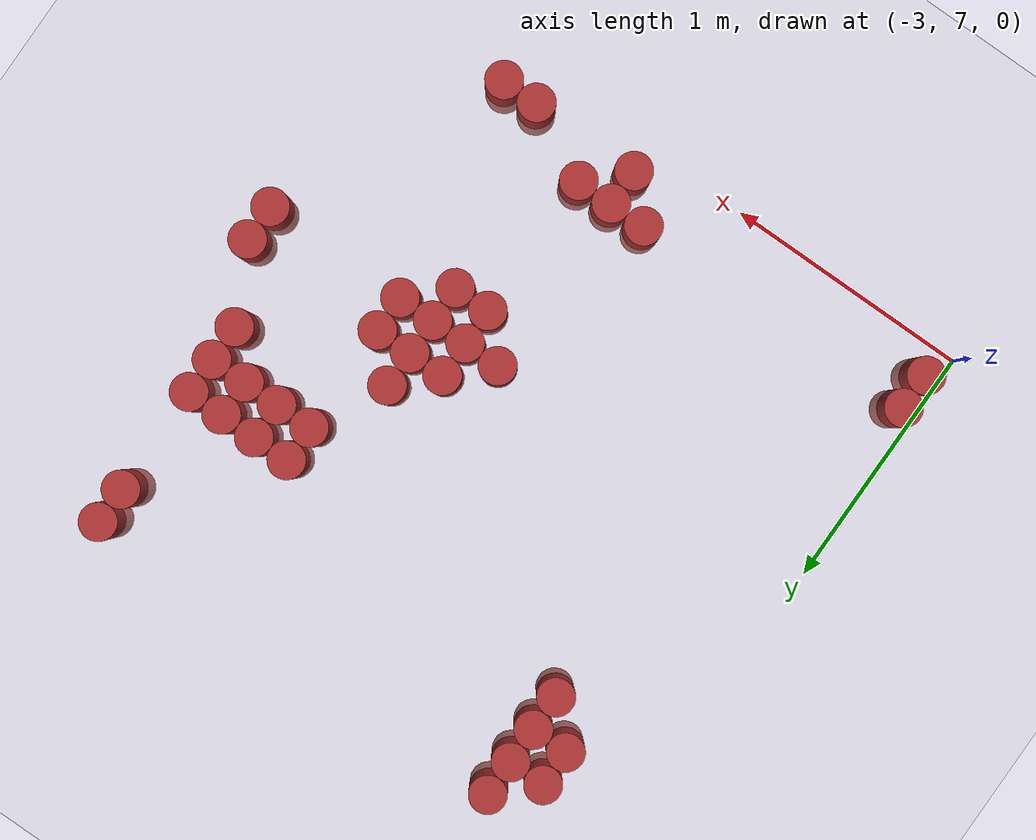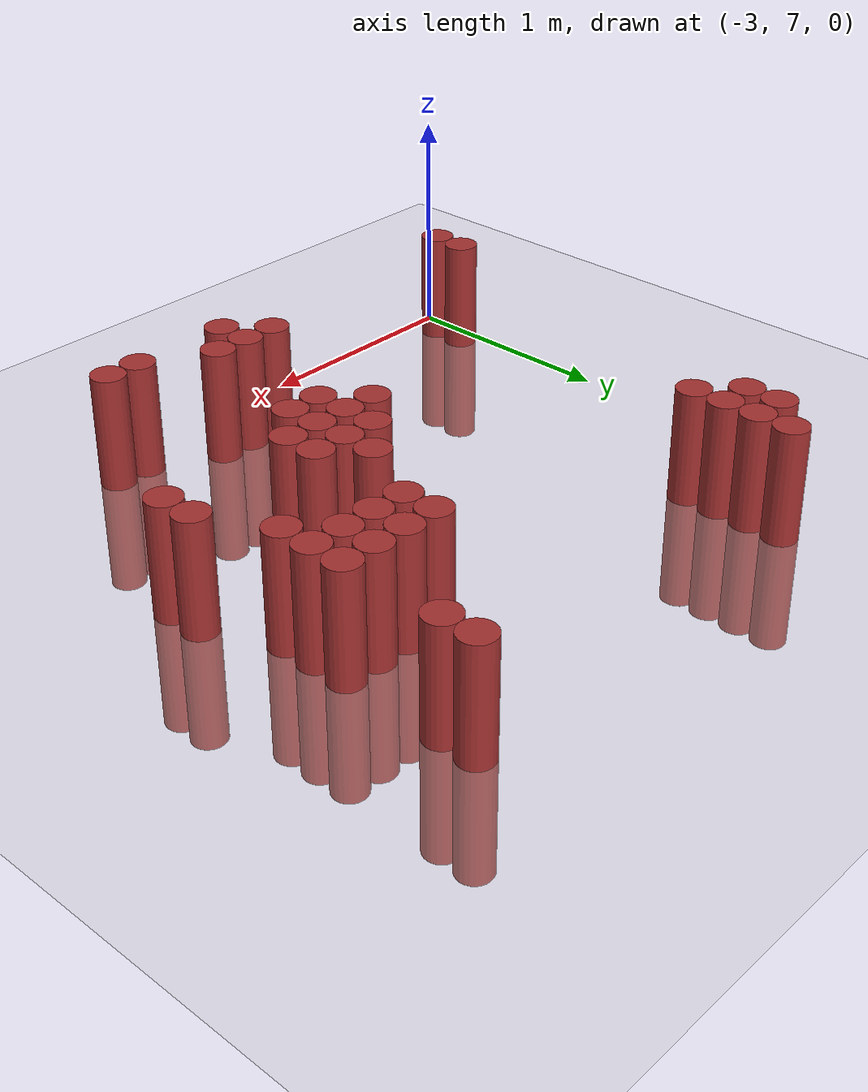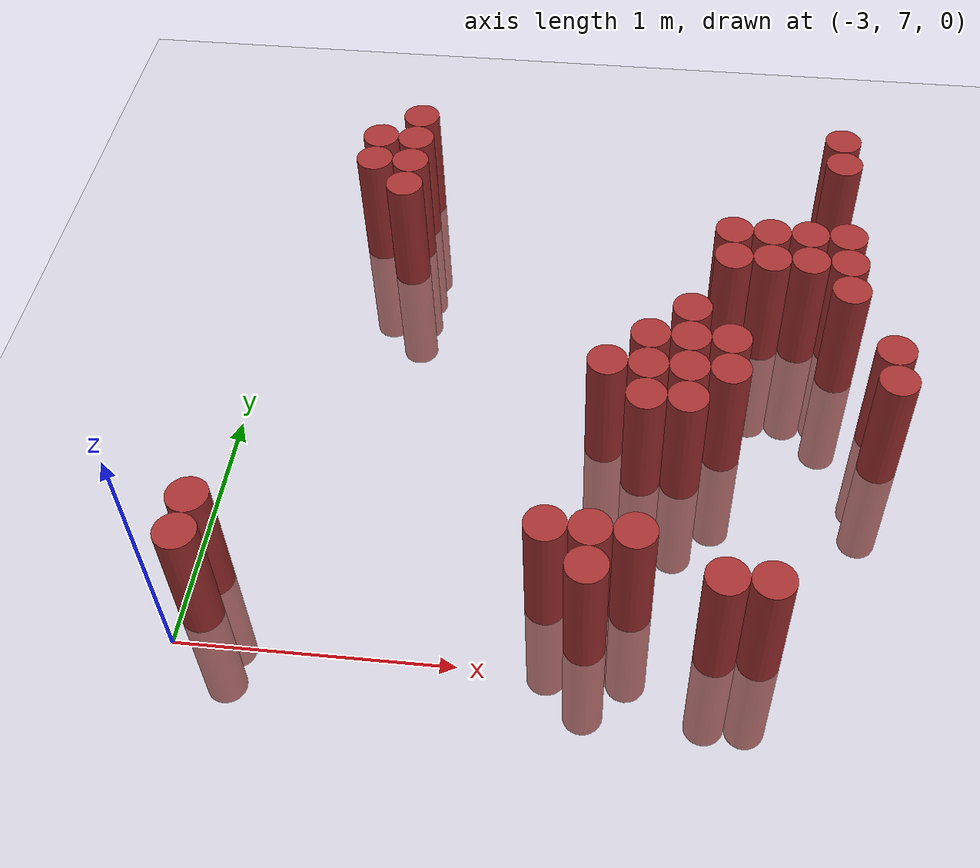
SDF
<sdf version="1.6">
 <world name="default">
  <model name="ground_plane">
   <static>1</static>
   <link name="link">
    <collision name="collision">
     <geometry><plane><normal>0 0 1</normal><size>100 100</size></plane></geometry>
     <surface><friction><ode><mu>100</mu><mu2>50</mu2></ode></friction></surface>
    </collision>
    <visual name="visual">
     <cast_shadows>0</cast_shadows>
     <geometry><plane><normal>0 0 1</normal><size>100 100</size></plane></geometry>
     <material>
      <script><uri>file://media/materials/scripts/gazebo.material</uri><name>Gazebo/Grey</name></script>
     </material>
    </visual>
   </link>
  </model>
  <model name="unit_cylinder_198">
   <static>1</static>
   <pose>-2.925000 7.125000 0.000000 0.000000 0.000000 0.000000</pose>
   <link name="link">
    <inertial>
     <mass>1</mass>
     <inertia><ixx>0.145833</ixx><ixy>0</ixy><ixz>0</ixz><iyy>0.145833</iyy><iyz>0</iyz><izz>0.125</izz></inertia>
    </inertial>
    <collision name="collision">
     <geometry><cylinder><radius>0.075000</radius><length>1</length></cylinder></geometry>
    </collision>
    <visual name="visual">
     <geometry><cylinder><radius>0.075000</radius><length>1</length></cylinder></geometry>
     <material>
      <ambient>0.648000 0.192000 0.192000 1</ambient>
      <diffuse>0.648000 0.192000 0.192000 1</diffuse>
     </material>
     <material>
      <script><name>Gazebo/Grey</name><uri>file://media/materials/scripts/gazebo.material</uri></script>
     </material>
    </visual>
    <sensor name="sensor_contact" type="contact"><contact><collision>collision</collision></contact></sensor>
   </link>
   <plugin filename="gz-sim-touchplugin-system" name="gz::sim::systems::TouchPlugin">
    <target>robot</target>
    <namespace>robot</namespace>
    <time>0.001</time>
    <enabled>true</enabled>
   </plugin>
  </model>
  <model name="unit_cylinder_199">
   <static>1</static>
   <pose>-2.925000 7.275000 0.000000 0.000000 0.000000 0.000000</pose>
   <link name="link">
    <inertial>
     <mass>1</mass>
     <inertia><ixx>0.145833</ixx><ixy>0</ixy><ixz>0</ixz><iyy>0.145833</iyy><iyz>0</iyz><izz>0.125</izz></inertia>
    </inertial>
    <collision name="collision">
     <geometry><cylinder><radius>0.075000</radius><length>1</length></cylinder></geometry>
    </collision>
    <visual name="visual">
     <geometry><cylinder><radius>0.075000</radius><length>1</length></cylinder></geometry>
     <material>
      <ambient>0.648000 0.192000 0.192000 1</ambient>
      <diffuse>0.648000 0.192000 0.192000 1</diffuse>
     </material>
     <material>
      <script><name>Gazebo/Grey</name><uri>file://media/materials/scripts/gazebo.material</uri></script>
     </material>
    </visual>
    <sensor name="sensor_contact" type="contact"><contact><collision>collision</collision></contact></sensor>
   </link>
   <plugin filename="gz-sim-touchplugin-system" name="gz::sim::systems::TouchPlugin">
    <target>robot</target>
    <namespace>robot</namespace>
    <time>0.001</time>
    <enabled>true</enabled>
   </plugin>
  </model>
  <model name="unit_cylinder_200">
   <static>1</static>
   <pose>-2.625000 9.075000 0.000000 0.000000 0.000000 0.000000</pose>
   <link name="link">
    <inertial>
     <mass>1</mass>
     <inertia><ixx>0.145833</ixx><ixy>0</ixy><ixz>0</ixz><iyy>0.145833</iyy><iyz>0</iyz><izz>0.125</izz></inertia>
    </inertial>
    <collision name="collision">
     <geometry><cylinder><radius>0.075000</radius><length>1</length></cylinder></geometry>
    </collision>
    <visual name="visual">
     <geometry><cylinder><radius>0.075000</radius><length>1</length></cylinder></geometry>
     <material>
      <ambient>0.648000 0.192000 0.192000 1</ambient>
      <diffuse>0.648000 0.192000 0.192000 1</diffuse>
     </material>
     <material>
      <script><name>Gazebo/Grey</name><uri>file://media/materials/scripts/gazebo.material</uri></script>
     </material>
    </visual>
    <sensor name="sensor_contact" type="contact"><contact><collision>collision</collision></contact></sensor>
   </link>
   <plugin filename="gz-sim-touchplugin-system" name="gz::sim::systems::TouchPlugin">
    <target>robot</target>
    <namespace>robot</namespace>
    <time>0.001</time>
    <enabled>true</enabled>
   </plugin>
  </model>
  <model name="unit_cylinder_201">
   <static>1</static>
   <pose>-2.625000 9.225000 0.000000 0.000000 0.000000 0.000000</pose>
   <link name="link">
    <inertial>
     <mass>1</mass>
     <inertia><ixx>0.145833</ixx><ixy>0</ixy><ixz>0</ixz><iyy>0.145833</iyy><iyz>0</iyz><izz>0.125</izz></inertia>
    </inertial>
    <collision name="collision">
     <geometry><cylinder><radius>0.075000</radius><length>1</length></cylinder></geometry>
    </collision>
    <visual name="visual">
     <geometry><cylinder><radius>0.075000</radius><length>1</length></cylinder></geometry>
     <material>
      <ambient>0.648000 0.192000 0.192000 1</ambient>
      <diffuse>0.648000 0.192000 0.192000 1</diffuse>
     </material>
     <material>
      <script><name>Gazebo/Grey</name><uri>file://media/materials/scripts/gazebo.material</uri></script>
     </material>
    </visual>
    <sensor name="sensor_contact" type="contact"><contact><collision>collision</collision></contact></sensor>
   </link>
   <plugin filename="gz-sim-touchplugin-system" name="gz::sim::systems::TouchPlugin">
    <target>robot</target>
    <namespace>robot</namespace>
    <time>0.001</time>
    <enabled>true</enabled>
   </plugin>
  </model>
  <model name="unit_cylinder_202">
   <static>1</static>
   <pose>-2.475000 8.925000 0.000000 0.000000 0.000000 0.000000</pose>
   <link name="link">
    <inertial>
     <mass>1</mass>
     <inertia><ixx>0.145833</ixx><ixy>0</ixy><ixz>0</ixz><iyy>0.145833</iyy><iyz>0</iyz><izz>0.125</izz></inertia>
    </inertial>
    <collision name="collision">
     <geometry><cylinder><radius>0.075000</radius><length>1</length></cylinder></geometry>
    </collision>
    <visual name="visual">
     <geometry><cylinder><radius>0.075000</radius><length>1</length></cylinder></geometry>
     <material>
      <ambient>0.648000 0.192000 0.192000 1</ambient>
      <diffuse>0.648000 0.192000 0.192000 1</diffuse>
     </material>
     <material>
      <script><name>Gazebo/Grey</name><uri>file://media/materials/scripts/gazebo.material</uri></script>
     </material>
    </visual>
    <sensor name="sensor_contact" type="contact"><contact><collision>collision</collision></contact></sensor>
   </link>
   <plugin filename="gz-sim-touchplugin-system" name="gz::sim::systems::TouchPlugin">
    <target>robot</target>
    <namespace>robot</namespace>
    <time>0.001</time>
    <enabled>true</enabled>
   </plugin>
  </model>
  <model name="unit_cylinder_203">
   <static>1</static>
   <pose>-2.475000 9.075000 0.000000 0.000000 0.000000 0.000000</pose>
   <link name="link">
    <inertial>
     <mass>1</mass>
     <inertia><ixx>0.145833</ixx><ixy>0</ixy><ixz>0</ixz><iyy>0.145833</iyy><iyz>0</iyz><izz>0.125</izz></inertia>
    </inertial>
    <collision name="collision">
     <geometry><cylinder><radius>0.075000</radius><length>1</length></cylinder></geometry>
    </collision>
    <visual name="visual">
     <geometry><cylinder><radius>0.075000</radius><length>1</length></cylinder></geometry>
     <material>
      <ambient>0.648000 0.192000 0.192000 1</ambient>
      <diffuse>0.648000 0.192000 0.192000 1</diffuse>
     </material>
     <material>
      <script><name>Gazebo/Grey</name><uri>file://media/materials/scripts/gazebo.material</uri></script>
     </material>
    </visual>
    <sensor name="sensor_contact" type="contact"><contact><collision>collision</collision></contact></sensor>
   </link>
   <plugin filename="gz-sim-touchplugin-system" name="gz::sim::systems::TouchPlugin">
    <target>robot</target>
    <namespace>robot</namespace>
    <time>0.001</time>
    <enabled>true</enabled>
   </plugin>
  </model>
  <model name="unit_cylinder_204">
   <static>1</static>
   <pose>-2.475000 9.225000 0.000000 0.000000 0.000000 0.000000</pose>
   <link name="link">
    <inertial>
     <mass>1</mass>
     <inertia><ixx>0.145833</ixx><ixy>0</ixy><ixz>0</ixz><iyy>0.145833</iyy><iyz>0</iyz><izz>0.125</izz></inertia>
    </inertial>
    <collision name="collision">
     <geometry><cylinder><radius>0.075000</radius><length>1</length></cylinder></geometry>
    </collision>
    <visual name="visual">
     <geometry><cylinder><radius>0.075000</radius><length>1</length></cylinder></geometry>
     <material>
      <ambient>0.648000 0.192000 0.192000 1</ambient>
      <diffuse>0.648000 0.192000 0.192000 1</diffuse>
     </material>
     <material>
      <script><name>Gazebo/Grey</name><uri>file://media/materials/scripts/gazebo.material</uri></script>
     </material>
    </visual>
    <sensor name="sensor_contact" type="contact"><contact><collision>collision</collision></contact></sensor>
   </link>
   <plugin filename="gz-sim-touchplugin-system" name="gz::sim::systems::TouchPlugin">
    <target>robot</target>
    <namespace>robot</namespace>
    <time>0.001</time>
    <enabled>true</enabled>
   </plugin>
  </model>
  <model name="unit_cylinder_205">
   <static>1</static>
   <pose>-2.475000 9.375000 0.000000 0.000000 0.000000 0.000000</pose>
   <link name="link">
    <inertial>
     <mass>1</mass>
     <inertia><ixx>0.145833</ixx><ixy>0</ixy><ixz>0</ixz><iyy>0.145833</iyy><iyz>0</iyz><izz>0.125</izz></inertia>
    </inertial>
    <collision name="collision">
     <geometry><cylinder><radius>0.075000</radius><length>1</length></cylinder></geometry>
    </collision>
    <visual name="visual">
     <geometry><cylinder><radius>0.075000</radius><length>1</length></cylinder></geometry>
     <material>
      <ambient>0.648000 0.192000 0.192000 1</ambient>
      <diffuse>0.648000 0.192000 0.192000 1</diffuse>
     </material>
     <material>
      <script><name>Gazebo/Grey</name><uri>file://media/materials/scripts/gazebo.material</uri></script>
     </material>
    </visual>
    <sensor name="sensor_contact" type="contact"><contact><collision>collision</collision></contact></sensor>
   </link>
   <plugin filename="gz-sim-touchplugin-system" name="gz::sim::systems::TouchPlugin">
    <target>robot</target>
    <namespace>robot</namespace>
    <time>0.001</time>
    <enabled>true</enabled>
   </plugin>
  </model>
  <model name="unit_cylinder_218">
   <static>1</static>
   <pose>-1.725000 7.275000 0.000000 0.000000 0.000000 0.000000</pose>
   <link name="link">
    <inertial>
     <mass>1</mass>
     <inertia><ixx>0.145833</ixx><ixy>0</ixy><ixz>0</ixz><iyy>0.145833</iyy><iyz>0</iyz><izz>0.125</izz></inertia>
    </inertial>
    <collision name="collision">
     <geometry><cylinder><radius>0.075000</radius><length>1</length></cylinder></geometry>
    </collision>
    <visual name="visual">
     <geometry><cylinder><radius>0.075000</radius><length>1</length></cylinder></geometry>
     <material>
      <ambient>0.648000 0.192000 0.192000 1</ambient>
      <diffuse>0.648000 0.192000 0.192000 1</diffuse>
     </material>
     <material>
      <script><name>Gazebo/Grey</name><uri>file://media/materials/scripts/gazebo.material</uri></script>
     </material>
    </visual>
    <sensor name="sensor_contact" type="contact"><contact><collision>collision</collision></contact></sensor>
   </link>
   <plugin filename="gz-sim-touchplugin-system" name="gz::sim::systems::TouchPlugin">
    <target>robot</target>
    <namespace>robot</namespace>
    <time>0.001</time>
    <enabled>true</enabled>
   </plugin>
  </model>
  <model name="unit_cylinder_223">
   <static>1</static>
   <pose>-1.575000 7.125000 0.000000 0.000000 0.000000 0.000000</pose>
   <link name="link">
    <inertial>
     <mass>1</mass>
     <inertia><ixx>0.145833</ixx><ixy>0</ixy><ixz>0</ixz><iyy>0.145833</iyy><iyz>0</iyz><izz>0.125</izz></inertia>
    </inertial>
    <collision name="collision">
     <geometry><cylinder><radius>0.075000</radius><length>1</length></cylinder></geometry>
    </collision>
    <visual name="visual">
     <geometry><cylinder><radius>0.075000</radius><length>1</length></cylinder></geometry>
     <material>
      <ambient>0.648000 0.192000 0.192000 1</ambient>
      <diffuse>0.648000 0.192000 0.192000 1</diffuse>
     </material>
     <material>
      <script><name>Gazebo/Grey</name><uri>file://media/materials/scripts/gazebo.material</uri></script>
     </material>
    </visual>
    <sensor name="sensor_contact" type="contact"><contact><collision>collision</collision></contact></sensor>
   </link>
   <plugin filename="gz-sim-touchplugin-system" name="gz::sim::systems::TouchPlugin">
    <target>robot</target>
    <namespace>robot</namespace>
    <time>0.001</time>
    <enabled>true</enabled>
   </plugin>
  </model>
  <model name="unit_cylinder_224">
   <static>1</static>
   <pose>-1.575000 7.275000 0.000000 0.000000 0.000000 0.000000</pose>
   <link name="link">
    <inertial>
     <mass>1</mass>
     <inertia><ixx>0.145833</ixx><ixy>0</ixy><ixz>0</ixz><iyy>0.145833</iyy><iyz>0</iyz><izz>0.125</izz></inertia>
    </inertial>
    <collision name="collision">
     <geometry><cylinder><radius>0.075000</radius><length>1</length></cylinder></geometry>
    </collision>
    <visual name="visual">
     <geometry><cylinder><radius>0.075000</radius><length>1</length></cylinder></geometry>
     <material>
      <ambient>0.648000 0.192000 0.192000 1</ambient>
      <diffuse>0.648000 0.192000 0.192000 1</diffuse>
     </material>
     <material>
      <script><name>Gazebo/Grey</name><uri>file://media/materials/scripts/gazebo.material</uri></script>
     </material>
    </visual>
    <sensor name="sensor_contact" type="contact"><contact><collision>collision</collision></contact></sensor>
   </link>
   <plugin filename="gz-sim-touchplugin-system" name="gz::sim::systems::TouchPlugin">
    <target>robot</target>
    <namespace>robot</namespace>
    <time>0.001</time>
    <enabled>true</enabled>
   </plugin>
  </model>
  <model name="unit_cylinder_225">
   <static>1</static>
   <pose>-1.575000 8.025000 0.000000 0.000000 0.000000 0.000000</pose>
   <link name="link">
    <inertial>
     <mass>1</mass>
     <inertia><ixx>0.145833</ixx><ixy>0</ixy><ixz>0</ixz><iyy>0.145833</iyy><iyz>0</iyz><izz>0.125</izz></inertia>
    </inertial>
    <collision name="collision">
     <geometry><cylinder><radius>0.075000</radius><length>1</length></cylinder></geometry>
    </collision>
    <visual name="visual">
     <geometry><cylinder><radius>0.075000</radius><length>1</length></cylinder></geometry>
     <material>
      <ambient>0.648000 0.192000 0.192000 1</ambient>
      <diffuse>0.648000 0.192000 0.192000 1</diffuse>
     </material>
     <material>
      <script><name>Gazebo/Grey</name><uri>file://media/materials/scripts/gazebo.material</uri></script>
     </material>
    </visual>
    <sensor name="sensor_contact" type="contact"><contact><collision>collision</collision></contact></sensor>
   </link>
   <plugin filename="gz-sim-touchplugin-system" name="gz::sim::systems::TouchPlugin">
    <target>robot</target>
    <namespace>robot</namespace>
    <time>0.001</time>
    <enabled>true</enabled>
   </plugin>
  </model>
  <model name="unit_cylinder_229">
   <static>1</static>
   <pose>-1.425000 7.275000 0.000000 0.000000 0.000000 0.000000</pose>
   <link name="link">
    <inertial>
     <mass>1</mass>
     <inertia><ixx>0.145833</ixx><ixy>0</ixy><ixz>0</ixz><iyy>0.145833</iyy><iyz>0</iyz><izz>0.125</izz></inertia>
    </inertial>
    <collision name="collision">
     <geometry><cylinder><radius>0.075000</radius><length>1</length></cylinder></geometry>
    </collision>
    <visual name="visual">
     <geometry><cylinder><radius>0.075000</radius><length>1</length></cylinder></geometry>
     <material>
      <ambient>0.648000 0.192000 0.192000 1</ambient>
      <diffuse>0.648000 0.192000 0.192000 1</diffuse>
     </material>
     <material>
      <script><name>Gazebo/Grey</name><uri>file://media/materials/scripts/gazebo.material</uri></script>
     </material>
    </visual>
    <sensor name="sensor_contact" type="contact"><contact><collision>collision</collision></contact></sensor>
   </link>
   <plugin filename="gz-sim-touchplugin-system" name="gz::sim::systems::TouchPlugin">
    <target>robot</target>
    <namespace>robot</namespace>
    <time>0.001</time>
    <enabled>true</enabled>
   </plugin>
  </model>
  <model name="unit_cylinder_230">
   <static>1</static>
   <pose>-1.425000 7.875000 0.000000 0.000000 0.000000 0.000000</pose>
   <link name="link">
    <inertial>
     <mass>1</mass>
     <inertia><ixx>0.145833</ixx><ixy>0</ixy><ixz>0</ixz><iyy>0.145833</iyy><iyz>0</iyz><izz>0.125</izz></inertia>
    </inertial>
    <collision name="collision">
     <geometry><cylinder><radius>0.075000</radius><length>1</length></cylinder></geometry>
    </collision>
    <visual name="visual">
     <geometry><cylinder><radius>0.075000</radius><length>1</length></cylinder></geometry>
     <material>
      <ambient>0.648000 0.192000 0.192000 1</ambient>
      <diffuse>0.648000 0.192000 0.192000 1</diffuse>
     </material>
     <material>
      <script><name>Gazebo/Grey</name><uri>file://media/materials/scripts/gazebo.material</uri></script>
     </material>
    </visual>
    <sensor name="sensor_contact" type="contact"><contact><collision>collision</collision></contact></sensor>
   </link>
   <plugin filename="gz-sim-touchplugin-system" name="gz::sim::systems::TouchPlugin">
    <target>robot</target>
    <namespace>robot</namespace>
    <time>0.001</time>
    <enabled>true</enabled>
   </plugin>
  </model>
  <model name="unit_cylinder_231">
   <static>1</static>
   <pose>-1.425000 8.025000 0.000000 0.000000 0.000000 0.000000</pose>
   <link name="link">
    <inertial>
     <mass>1</mass>
     <inertia><ixx>0.145833</ixx><ixy>0</ixy><ixz>0</ixz><iyy>0.145833</iyy><iyz>0</iyz><izz>0.125</izz></inertia>
    </inertial>
    <collision name="collision">
     <geometry><cylinder><radius>0.075000</radius><length>1</length></cylinder></geometry>
    </collision>
    <visual name="visual">
     <geometry><cylinder><radius>0.075000</radius><length>1</length></cylinder></geometry>
     <material>
      <ambient>0.648000 0.192000 0.192000 1</ambient>
      <diffuse>0.648000 0.192000 0.192000 1</diffuse>
     </material>
     <material>
      <script><name>Gazebo/Grey</name><uri>file://media/materials/scripts/gazebo.material</uri></script>
     </material>
    </visual>
    <sensor name="sensor_contact" type="contact"><contact><collision>collision</collision></contact></sensor>
   </link>
   <plugin filename="gz-sim-touchplugin-system" name="gz::sim::systems::TouchPlugin">
    <target>robot</target>
    <namespace>robot</namespace>
    <time>0.001</time>
    <enabled>true</enabled>
   </plugin>
  </model>
  <model name="unit_cylinder_232">
   <static>1</static>
   <pose>-1.425000 8.175000 0.000000 0.000000 0.000000 0.000000</pose>
   <link name="link">
    <inertial>
     <mass>1</mass>
     <inertia><ixx>0.145833</ixx><ixy>0</ixy><ixz>0</ixz><iyy>0.145833</iyy><iyz>0</iyz><izz>0.125</izz></inertia>
    </inertial>
    <collision name="collision">
     <geometry><cylinder><radius>0.075000</radius><length>1</length></cylinder></geometry>
    </collision>
    <visual name="visual">
     <geometry><cylinder><radius>0.075000</radius><length>1</length></cylinder></geometry>
     <material>
      <ambient>0.648000 0.192000 0.192000 1</ambient>
      <diffuse>0.648000 0.192000 0.192000 1</diffuse>
     </material>
     <material>
      <script><name>Gazebo/Grey</name><uri>file://media/materials/scripts/gazebo.material</uri></script>
     </material>
    </visual>
    <sensor name="sensor_contact" type="contact"><contact><collision>collision</collision></contact></sensor>
   </link>
   <plugin filename="gz-sim-touchplugin-system" name="gz::sim::systems::TouchPlugin">
    <target>robot</target>
    <namespace>robot</namespace>
    <time>0.001</time>
    <enabled>true</enabled>
   </plugin>
  </model>
  <model name="unit_cylinder_235">
   <static>1</static>
   <pose>-1.275000 7.875000 0.000000 0.000000 0.000000 0.000000</pose>
   <link name="link">
    <inertial>
     <mass>1</mass>
     <inertia><ixx>0.145833</ixx><ixy>0</ixy><ixz>0</ixz><iyy>0.145833</iyy><iyz>0</iyz><izz>0.125</izz></inertia>
    </inertial>
    <collision name="collision">
     <geometry><cylinder><radius>0.075000</radius><length>1</length></cylinder></geometry>
    </collision>
    <visual name="visual">
     <geometry><cylinder><radius>0.075000</radius><length>1</length></cylinder></geometry>
     <material>
      <ambient>0.648000 0.192000 0.192000 1</ambient>
      <diffuse>0.648000 0.192000 0.192000 1</diffuse>
     </material>
     <material>
      <script><name>Gazebo/Grey</name><uri>file://media/materials/scripts/gazebo.material</uri></script>
     </material>
    </visual>
    <sensor name="sensor_contact" type="contact"><contact><collision>collision</collision></contact></sensor>
   </link>
   <plugin filename="gz-sim-touchplugin-system" name="gz::sim::systems::TouchPlugin">
    <target>robot</target>
    <namespace>robot</namespace>
    <time>0.001</time>
    <enabled>true</enabled>
   </plugin>
  </model>
  <model name="unit_cylinder_236">
   <static>1</static>
   <pose>-1.275000 8.025000 0.000000 0.000000 0.000000 0.000000</pose>
   <link name="link">
    <inertial>
     <mass>1</mass>
     <inertia><ixx>0.145833</ixx><ixy>0</ixy><ixz>0</ixz><iyy>0.145833</iyy><iyz>0</iyz><izz>0.125</izz></inertia>
    </inertial>
    <collision name="collision">
     <geometry><cylinder><radius>0.075000</radius><length>1</length></cylinder></geometry>
    </collision>
    <visual name="visual">
     <geometry><cylinder><radius>0.075000</radius><length>1</length></cylinder></geometry>
     <material>
      <ambient>0.648000 0.192000 0.192000 1</ambient>
      <diffuse>0.648000 0.192000 0.192000 1</diffuse>
     </material>
     <material>
      <script><name>Gazebo/Grey</name><uri>file://media/materials/scripts/gazebo.material</uri></script>
     </material>
    </visual>
    <sensor name="sensor_contact" type="contact"><contact><collision>collision</collision></contact></sensor>
   </link>
   <plugin filename="gz-sim-touchplugin-system" name="gz::sim::systems::TouchPlugin">
    <target>robot</target>
    <namespace>robot</namespace>
    <time>0.001</time>
    <enabled>true</enabled>
   </plugin>
  </model>
  <model name="unit_cylinder_237">
   <static>1</static>
   <pose>-1.275000 8.175000 0.000000 0.000000 0.000000 0.000000</pose>
   <link name="link">
    <inertial>
     <mass>1</mass>
     <inertia><ixx>0.145833</ixx><ixy>0</ixy><ixz>0</ixz><iyy>0.145833</iyy><iyz>0</iyz><izz>0.125</izz></inertia>
    </inertial>
    <collision name="collision">
     <geometry><cylinder><radius>0.075000</radius><length>1</length></cylinder></geometry>
    </collision>
    <visual name="visual">
     <geometry><cylinder><radius>0.075000</radius><length>1</length></cylinder></geometry>
     <material>
      <ambient>0.648000 0.192000 0.192000 1</ambient>
      <diffuse>0.648000 0.192000 0.192000 1</diffuse>
     </material>
     <material>
      <script><name>Gazebo/Grey</name><uri>file://media/materials/scripts/gazebo.material</uri></script>
     </material>
    </visual>
    <sensor name="sensor_contact" type="contact"><contact><collision>collision</collision></contact></sensor>
   </link>
   <plugin filename="gz-sim-touchplugin-system" name="gz::sim::systems::TouchPlugin">
    <target>robot</target>
    <namespace>robot</namespace>
    <time>0.001</time>
    <enabled>true</enabled>
   </plugin>
  </model>
  <model name="unit_cylinder_238">
   <static>1</static>
   <pose>-1.275000 8.325000 0.000000 0.000000 0.000000 0.000000</pose>
   <link name="link">
    <inertial>
     <mass>1</mass>
     <inertia><ixx>0.145833</ixx><ixy>0</ixy><ixz>0</ixz><iyy>0.145833</iyy><iyz>0</iyz><izz>0.125</izz></inertia>
    </inertial>
    <collision name="collision">
     <geometry><cylinder><radius>0.075000</radius><length>1</length></cylinder></geometry>
    </collision>
    <visual name="visual">
     <geometry><cylinder><radius>0.075000</radius><length>1</length></cylinder></geometry>
     <material>
      <ambient>0.648000 0.192000 0.192000 1</ambient>
      <diffuse>0.648000 0.192000 0.192000 1</diffuse>
     </material>
     <material>
      <script><name>Gazebo/Grey</name><uri>file://media/materials/scripts/gazebo.material</uri></script>
     </material>
    </visual>
    <sensor name="sensor_contact" type="contact"><contact><collision>collision</collision></contact></sensor>
   </link>
   <plugin filename="gz-sim-touchplugin-system" name="gz::sim::systems::TouchPlugin">
    <target>robot</target>
    <namespace>robot</namespace>
    <time>0.001</time>
    <enabled>true</enabled>
   </plugin>
  </model>
  <model name="unit_cylinder_244">
   <static>1</static>
   <pose>-1.125000 7.125000 0.000000 0.000000 0.000000 0.000000</pose>
   <link name="link">
    <inertial>
     <mass>1</mass>
     <inertia><ixx>0.145833</ixx><ixy>0</ixy><ixz>0</ixz><iyy>0.145833</iyy><iyz>0</iyz><izz>0.125</izz></inertia>
    </inertial>
    <collision name="collision">
     <geometry><cylinder><radius>0.075000</radius><length>1</length></cylinder></geometry>
    </collision>
    <visual name="visual">
     <geometry><cylinder><radius>0.075000</radius><length>1</length></cylinder></geometry>
     <material>
      <ambient>0.648000 0.192000 0.192000 1</ambient>
      <diffuse>0.648000 0.192000 0.192000 1</diffuse>
     </material>
     <material>
      <script><name>Gazebo/Grey</name><uri>file://media/materials/scripts/gazebo.material</uri></script>
     </material>
    </visual>
    <sensor name="sensor_contact" type="contact"><contact><collision>collision</collision></contact></sensor>
   </link>
   <plugin filename="gz-sim-touchplugin-system" name="gz::sim::systems::TouchPlugin">
    <target>robot</target>
    <namespace>robot</namespace>
    <time>0.001</time>
    <enabled>true</enabled>
   </plugin>
  </model>
  <model name="unit_cylinder_245">
   <static>1</static>
   <pose>-1.125000 8.025000 0.000000 0.000000 0.000000 0.000000</pose>
   <link name="link">
    <inertial>
     <mass>1</mass>
     <inertia><ixx>0.145833</ixx><ixy>0</ixy><ixz>0</ixz><iyy>0.145833</iyy><iyz>0</iyz><izz>0.125</izz></inertia>
    </inertial>
    <collision name="collision">
     <geometry><cylinder><radius>0.075000</radius><length>1</length></cylinder></geometry>
    </collision>
    <visual name="visual">
     <geometry><cylinder><radius>0.075000</radius><length>1</length></cylinder></geometry>
     <material>
      <ambient>0.648000 0.192000 0.192000 1</ambient>
      <diffuse>0.648000 0.192000 0.192000 1</diffuse>
     </material>
     <material>
      <script><name>Gazebo/Grey</name><uri>file://media/materials/scripts/gazebo.material</uri></script>
     </material>
    </visual>
    <sensor name="sensor_contact" type="contact"><contact><collision>collision</collision></contact></sensor>
   </link>
   <plugin filename="gz-sim-touchplugin-system" name="gz::sim::systems::TouchPlugin">
    <target>robot</target>
    <namespace>robot</namespace>
    <time>0.001</time>
    <enabled>true</enabled>
   </plugin>
  </model>
  <model name="unit_cylinder_246">
   <static>1</static>
   <pose>-1.125000 8.175000 0.000000 0.000000 0.000000 0.000000</pose>
   <link name="link">
    <inertial>
     <mass>1</mass>
     <inertia><ixx>0.145833</ixx><ixy>0</ixy><ixz>0</ixz><iyy>0.145833</iyy><iyz>0</iyz><izz>0.125</izz></inertia>
    </inertial>
    <collision name="collision">
     <geometry><cylinder><radius>0.075000</radius><length>1</length></cylinder></geometry>
    </collision>
    <visual name="visual">
     <geometry><cylinder><radius>0.075000</radius><length>1</length></cylinder></geometry>
     <material>
      <ambient>0.648000 0.192000 0.192000 1</ambient>
      <diffuse>0.648000 0.192000 0.192000 1</diffuse>
     </material>
     <material>
      <script><name>Gazebo/Grey</name><uri>file://media/materials/scripts/gazebo.material</uri></script>
     </material>
    </visual>
    <sensor name="sensor_contact" type="contact"><contact><collision>collision</collision></contact></sensor>
   </link>
   <plugin filename="gz-sim-touchplugin-system" name="gz::sim::systems::TouchPlugin">
    <target>robot</target>
    <namespace>robot</namespace>
    <time>0.001</time>
    <enabled>true</enabled>
   </plugin>
  </model>
  <model name="unit_cylinder_247">
   <static>1</static>
   <pose>-1.125000 8.625000 0.000000 0.000000 0.000000 0.000000</pose>
   <link name="link">
    <inertial>
     <mass>1</mass>
     <inertia><ixx>0.145833</ixx><ixy>0</ixy><ixz>0</ixz><iyy>0.145833</iyy><iyz>0</iyz><izz>0.125</izz></inertia>
    </inertial>
    <collision name="collision">
     <geometry><cylinder><radius>0.075000</radius><length>1</length></cylinder></geometry>
    </collision>
    <visual name="visual">
     <geometry><cylinder><radius>0.075000</radius><length>1</length></cylinder></geometry>
     <material>
      <ambient>0.648000 0.192000 0.192000 1</ambient>
      <diffuse>0.648000 0.192000 0.192000 1</diffuse>
     </material>
     <material>
      <script><name>Gazebo/Grey</name><uri>file://media/materials/scripts/gazebo.material</uri></script>
     </material>
    </visual>
    <sensor name="sensor_contact" type="contact"><contact><collision>collision</collision></contact></sensor>
   </link>
   <plugin filename="gz-sim-touchplugin-system" name="gz::sim::systems::TouchPlugin">
    <target>robot</target>
    <namespace>robot</namespace>
    <time>0.001</time>
    <enabled>true</enabled>
   </plugin>
  </model>
  <model name="unit_cylinder_248">
   <static>1</static>
   <pose>-1.125000 8.775000 0.000000 0.000000 0.000000 0.000000</pose>
   <link name="link">
    <inertial>
     <mass>1</mass>
     <inertia><ixx>0.145833</ixx><ixy>0</ixy><ixz>0</ixz><iyy>0.145833</iyy><iyz>0</iyz><izz>0.125</izz></inertia>
    </inertial>
    <collision name="collision">
     <geometry><cylinder><radius>0.075000</radius><length>1</length></cylinder></geometry>
    </collision>
    <visual name="visual">
     <geometry><cylinder><radius>0.075000</radius><length>1</length></cylinder></geometry>
     <material>
      <ambient>0.648000 0.192000 0.192000 1</ambient>
      <diffuse>0.648000 0.192000 0.192000 1</diffuse>
     </material>
     <material>
      <script><name>Gazebo/Grey</name><uri>file://media/materials/scripts/gazebo.material</uri></script>
     </material>
    </visual>
    <sensor name="sensor_contact" type="contact"><contact><collision>collision</collision></contact></sensor>
   </link>
   <plugin filename="gz-sim-touchplugin-system" name="gz::sim::systems::TouchPlugin">
    <target>robot</target>
    <namespace>robot</namespace>
    <time>0.001</time>
    <enabled>true</enabled>
   </plugin>
  </model>
  <model name="unit_cylinder_255">
   <static>1</static>
   <pose>-0.975000 7.125000 0.000000 0.000000 0.000000 0.000000</pose>
   <link name="link">
    <inertial>
     <mass>1</mass>
     <inertia><ixx>0.145833</ixx><ixy>0</ixy><ixz>0</ixz><iyy>0.145833</iyy><iyz>0</iyz><izz>0.125</izz></inertia>
    </inertial>
    <collision name="collision">
     <geometry><cylinder><radius>0.075000</radius><length>1</length></cylinder></geometry>
    </collision>
    <visual name="visual">
     <geometry><cylinder><radius>0.075000</radius><length>1</length></cylinder></geometry>
     <material>
      <ambient>0.648000 0.192000 0.192000 1</ambient>
      <diffuse>0.648000 0.192000 0.192000 1</diffuse>
     </material>
     <material>
      <script><name>Gazebo/Grey</name><uri>file://media/materials/scripts/gazebo.material</uri></script>
     </material>
    </visual>
    <sensor name="sensor_contact" type="contact"><contact><collision>collision</collision></contact></sensor>
   </link>
   <plugin filename="gz-sim-touchplugin-system" name="gz::sim::systems::TouchPlugin">
    <target>robot</target>
    <namespace>robot</namespace>
    <time>0.001</time>
    <enabled>true</enabled>
   </plugin>
  </model>
  <model name="unit_cylinder_256">
   <static>1</static>
   <pose>-0.975000 8.625000 0.000000 0.000000 0.000000 0.000000</pose>
   <link name="link">
    <inertial>
     <mass>1</mass>
     <inertia><ixx>0.145833</ixx><ixy>0</ixy><ixz>0</ixz><iyy>0.145833</iyy><iyz>0</iyz><izz>0.125</izz></inertia>
    </inertial>
    <collision name="collision">
     <geometry><cylinder><radius>0.075000</radius><length>1</length></cylinder></geometry>
    </collision>
    <visual name="visual">
     <geometry><cylinder><radius>0.075000</radius><length>1</length></cylinder></geometry>
     <material>
      <ambient>0.648000 0.192000 0.192000 1</ambient>
      <diffuse>0.648000 0.192000 0.192000 1</diffuse>
     </material>
     <material>
      <script><name>Gazebo/Grey</name><uri>file://media/materials/scripts/gazebo.material</uri></script>
     </material>
    </visual>
    <sensor name="sensor_contact" type="contact"><contact><collision>collision</collision></contact></sensor>
   </link>
   <plugin filename="gz-sim-touchplugin-system" name="gz::sim::systems::TouchPlugin">
    <target>robot</target>
    <namespace>robot</namespace>
    <time>0.001</time>
    <enabled>true</enabled>
   </plugin>
  </model>
  <model name="unit_cylinder_257">
   <static>1</static>
   <pose>-0.975000 8.775000 0.000000 0.000000 0.000000 0.000000</pose>
   <link name="link">
    <inertial>
     <mass>1</mass>
     <inertia><ixx>0.145833</ixx><ixy>0</ixy><ixz>0</ixz><iyy>0.145833</iyy><iyz>0</iyz><izz>0.125</izz></inertia>
    </inertial>
    <collision name="collision">
     <geometry><cylinder><radius>0.075000</radius><length>1</length></cylinder></geometry>
    </collision>
    <visual name="visual">
     <geometry><cylinder><radius>0.075000</radius><length>1</length></cylinder></geometry>
     <material>
      <ambient>0.648000 0.192000 0.192000 1</ambient>
      <diffuse>0.648000 0.192000 0.192000 1</diffuse>
     </material>
     <material>
      <script><name>Gazebo/Grey</name><uri>file://media/materials/scripts/gazebo.material</uri></script>
     </material>
    </visual>
    <sensor name="sensor_contact" type="contact"><contact><collision>collision</collision></contact></sensor>
   </link>
   <plugin filename="gz-sim-touchplugin-system" name="gz::sim::systems::TouchPlugin">
    <target>robot</target>
    <namespace>robot</namespace>
    <time>0.001</time>
    <enabled>true</enabled>
   </plugin>
  </model>
  <model name="unit_cylinder_263">
   <static>1</static>
   <pose>-0.825000 8.625000 0.000000 0.000000 0.000000 0.000000</pose>
   <link name="link">
    <inertial>
     <mass>1</mass>
     <inertia><ixx>0.145833</ixx><ixy>0</ixy><ixz>0</ixz><iyy>0.145833</iyy><iyz>0</iyz><izz>0.125</izz></inertia>
    </inertial>
    <collision name="collision">
     <geometry><cylinder><radius>0.075000</radius><length>1</length></cylinder></geometry>
    </collision>
    <visual name="visual">
     <geometry><cylinder><radius>0.075000</radius><length>1</length></cylinder></geometry>
     <material>
      <ambient>0.648000 0.192000 0.192000 1</ambient>
      <diffuse>0.648000 0.192000 0.192000 1</diffuse>
     </material>
     <material>
      <script><name>Gazebo/Grey</name><uri>file://media/materials/scripts/gazebo.material</uri></script>
     </material>
    </visual>
    <sensor name="sensor_contact" type="contact"><contact><collision>collision</collision></contact></sensor>
   </link>
   <plugin filename="gz-sim-touchplugin-system" name="gz::sim::systems::TouchPlugin">
    <target>robot</target>
    <namespace>robot</namespace>
    <time>0.001</time>
    <enabled>true</enabled>
   </plugin>
  </model>
  <model name="unit_cylinder_264">
   <static>1</static>
   <pose>-0.825000 8.775000 0.000000 0.000000 0.000000 0.000000</pose>
   <link name="link">
    <inertial>
     <mass>1</mass>
     <inertia><ixx>0.145833</ixx><ixy>0</ixy><ixz>0</ixz><iyy>0.145833</iyy><iyz>0</iyz><izz>0.125</izz></inertia>
    </inertial>
    <collision name="collision">
     <geometry><cylinder><radius>0.075000</radius><length>1</length></cylinder></geometry>
    </collision>
    <visual name="visual">
     <geometry><cylinder><radius>0.075000</radius><length>1</length></cylinder></geometry>
     <material>
      <ambient>0.648000 0.192000 0.192000 1</ambient>
      <diffuse>0.648000 0.192000 0.192000 1</diffuse>
     </material>
     <material>
      <script><name>Gazebo/Grey</name><uri>file://media/materials/scripts/gazebo.material</uri></script>
     </material>
    </visual>
    <sensor name="sensor_contact" type="contact"><contact><collision>collision</collision></contact></sensor>
   </link>
   <plugin filename="gz-sim-touchplugin-system" name="gz::sim::systems::TouchPlugin">
    <target>robot</target>
    <namespace>robot</namespace>
    <time>0.001</time>
    <enabled>true</enabled>
   </plugin>
  </model>
  <model name="unit_cylinder_270">
   <static>1</static>
   <pose>-0.675000 8.475000 0.000000 0.000000 0.000000 0.000000</pose>
   <link name="link">
    <inertial>
     <mass>1</mass>
     <inertia><ixx>0.145833</ixx><ixy>0</ixy><ixz>0</ixz><iyy>0.145833</iyy><iyz>0</iyz><izz>0.125</izz></inertia>
    </inertial>
    <collision name="collision">
     <geometry><cylinder><radius>0.075000</radius><length>1</length></cylinder></geometry>
    </collision>
    <visual name="visual">
     <geometry><cylinder><radius>0.075000</radius><length>1</length></cylinder></geometry>
     <material>
      <ambient>0.648000 0.192000 0.192000 1</ambient>
      <diffuse>0.648000 0.192000 0.192000 1</diffuse>
     </material>
     <material>
      <script><name>Gazebo/Grey</name><uri>file://media/materials/scripts/gazebo.material</uri></script>
     </material>
    </visual>
    <sensor name="sensor_contact" type="contact"><contact><collision>collision</collision></contact></sensor>
   </link>
   <plugin filename="gz-sim-touchplugin-system" name="gz::sim::systems::TouchPlugin">
    <target>robot</target>
    <namespace>robot</namespace>
    <time>0.001</time>
    <enabled>true</enabled>
   </plugin>
  </model>
  <model name="unit_cylinder_271">
   <static>1</static>
   <pose>-0.675000 8.625000 0.000000 0.000000 0.000000 0.000000</pose>
   <link name="link">
    <inertial>
     <mass>1</mass>
     <inertia><ixx>0.145833</ixx><ixy>0</ixy><ixz>0</ixz><iyy>0.145833</iyy><iyz>0</iyz><izz>0.125</izz></inertia>
    </inertial>
    <collision name="collision">
     <geometry><cylinder><radius>0.075000</radius><length>1</length></cylinder></geometry>
    </collision>
    <visual name="visual">
     <geometry><cylinder><radius>0.075000</radius><length>1</length></cylinder></geometry>
     <material>
      <ambient>0.648000 0.192000 0.192000 1</ambient>
      <diffuse>0.648000 0.192000 0.192000 1</diffuse>
     </material>
     <material>
      <script><name>Gazebo/Grey</name><uri>file://media/materials/scripts/gazebo.material</uri></script>
     </material>
    </visual>
    <sensor name="sensor_contact" type="contact"><contact><collision>collision</collision></contact></sensor>
   </link>
   <plugin filename="gz-sim-touchplugin-system" name="gz::sim::systems::TouchPlugin">
    <target>robot</target>
    <namespace>robot</namespace>
    <time>0.001</time>
    <enabled>true</enabled>
   </plugin>
  </model>
  <model name="unit_cylinder_272">
   <static>1</static>
   <pose>-0.675000 8.775000 0.000000 0.000000 0.000000 0.000000</pose>
   <link name="link">
    <inertial>
     <mass>1</mass>
     <inertia><ixx>0.145833</ixx><ixy>0</ixy><ixz>0</ixz><iyy>0.145833</iyy><iyz>0</iyz><izz>0.125</izz></inertia>
    </inertial>
    <collision name="collision">
     <geometry><cylinder><radius>0.075000</radius><length>1</length></cylinder></geometry>
    </collision>
    <visual name="visual">
     <geometry><cylinder><radius>0.075000</radius><length>1</length></cylinder></geometry>
     <material>
      <ambient>0.648000 0.192000 0.192000 1</ambient>
      <diffuse>0.648000 0.192000 0.192000 1</diffuse>
     </material>
     <material>
      <script><name>Gazebo/Grey</name><uri>file://media/materials/scripts/gazebo.material</uri></script>
     </material>
    </visual>
    <sensor name="sensor_contact" type="contact"><contact><collision>collision</collision></contact></sensor>
   </link>
   <plugin filename="gz-sim-touchplugin-system" name="gz::sim::systems::TouchPlugin">
    <target>robot</target>
    <namespace>robot</namespace>
    <time>0.001</time>
    <enabled>true</enabled>
   </plugin>
  </model>
  <model name="unit_cylinder_273">
   <static>1</static>
   <pose>-0.675000 9.225000 0.000000 0.000000 0.000000 0.000000</pose>
   <link name="link">
    <inertial>
     <mass>1</mass>
     <inertia><ixx>0.145833</ixx><ixy>0</ixy><ixz>0</ixz><iyy>0.145833</iyy><iyz>0</iyz><izz>0.125</izz></inertia>
    </inertial>
    <collision name="collision">
     <geometry><cylinder><radius>0.075000</radius><length>1</length></cylinder></geometry>
    </collision>
    <visual name="visual">
     <geometry><cylinder><radius>0.075000</radius><length>1</length></cylinder></geometry>
     <material>
      <ambient>0.648000 0.192000 0.192000 1</ambient>
      <diffuse>0.648000 0.192000 0.192000 1</diffuse>
     </material>
     <material>
      <script><name>Gazebo/Grey</name><uri>file://media/materials/scripts/gazebo.material</uri></script>
     </material>
    </visual>
    <sensor name="sensor_contact" type="contact"><contact><collision>collision</collision></contact></sensor>
   </link>
   <plugin filename="gz-sim-touchplugin-system" name="gz::sim::systems::TouchPlugin">
    <target>robot</target>
    <namespace>robot</namespace>
    <time>0.001</time>
    <enabled>true</enabled>
   </plugin>
  </model>
  <model name="unit_cylinder_274">
   <static>1</static>
   <pose>-0.675000 9.375000 0.000000 0.000000 0.000000 0.000000</pose>
   <link name="link">
    <inertial>
     <mass>1</mass>
     <inertia><ixx>0.145833</ixx><ixy>0</ixy><ixz>0</ixz><iyy>0.145833</iyy><iyz>0</iyz><izz>0.125</izz></inertia>
    </inertial>
    <collision name="collision">
     <geometry><cylinder><radius>0.075000</radius><length>1</length></cylinder></geometry>
    </collision>
    <visual name="visual">
     <geometry><cylinder><radius>0.075000</radius><length>1</length></cylinder></geometry>
     <material>
      <ambient>0.648000 0.192000 0.192000 1</ambient>
      <diffuse>0.648000 0.192000 0.192000 1</diffuse>
     </material>
     <material>
      <script><name>Gazebo/Grey</name><uri>file://media/materials/scripts/gazebo.material</uri></script>
     </material>
    </visual>
    <sensor name="sensor_contact" type="contact"><contact><collision>collision</collision></contact></sensor>
   </link>
   <plugin filename="gz-sim-touchplugin-system" name="gz::sim::systems::TouchPlugin">
    <target>robot</target>
    <namespace>robot</namespace>
    <time>0.001</time>
    <enabled>true</enabled>
   </plugin>
  </model>
  <model name="unit_cylinder_277">
   <static>1</static>
   <pose>-0.525000 8.025000 0.000000 0.000000 0.000000 0.000000</pose>
   <link name="link">
    <inertial>
     <mass>1</mass>
     <inertia><ixx>0.145833</ixx><ixy>0</ixy><ixz>0</ixz><iyy>0.145833</iyy><iyz>0</iyz><izz>0.125</izz></inertia>
    </inertial>
    <collision name="collision">
     <geometry><cylinder><radius>0.075000</radius><length>1</length></cylinder></geometry>
    </collision>
    <visual name="visual">
     <geometry><cylinder><radius>0.075000</radius><length>1</length></cylinder></geometry>
     <material>
      <ambient>0.648000 0.192000 0.192000 1</ambient>
      <diffuse>0.648000 0.192000 0.192000 1</diffuse>
     </material>
     <material>
      <script><name>Gazebo/Grey</name><uri>file://media/materials/scripts/gazebo.material</uri></script>
     </material>
    </visual>
    <sensor name="sensor_contact" type="contact"><contact><collision>collision</collision></contact></sensor>
   </link>
   <plugin filename="gz-sim-touchplugin-system" name="gz::sim::systems::TouchPlugin">
    <target>robot</target>
    <namespace>robot</namespace>
    <time>0.001</time>
    <enabled>true</enabled>
   </plugin>
  </model>
  <model name="unit_cylinder_278">
   <static>1</static>
   <pose>-0.525000 8.175000 0.000000 0.000000 0.000000 0.000000</pose>
   <link name="link">
    <inertial>
     <mass>1</mass>
     <inertia><ixx>0.145833</ixx><ixy>0</ixy><ixz>0</ixz><iyy>0.145833</iyy><iyz>0</iyz><izz>0.125</izz></inertia>
    </inertial>
    <collision name="collision">
     <geometry><cylinder><radius>0.075000</radius><length>1</length></cylinder></geometry>
    </collision>
    <visual name="visual">
     <geometry><cylinder><radius>0.075000</radius><length>1</length></cylinder></geometry>
     <material>
      <ambient>0.648000 0.192000 0.192000 1</ambient>
      <diffuse>0.648000 0.192000 0.192000 1</diffuse>
     </material>
     <material>
      <script><name>Gazebo/Grey</name><uri>file://media/materials/scripts/gazebo.material</uri></script>
     </material>
    </visual>
    <sensor name="sensor_contact" type="contact"><contact><collision>collision</collision></contact></sensor>
   </link>
   <plugin filename="gz-sim-touchplugin-system" name="gz::sim::systems::TouchPlugin">
    <target>robot</target>
    <namespace>robot</namespace>
    <time>0.001</time>
    <enabled>true</enabled>
   </plugin>
  </model>
 </world>
</sdf>
